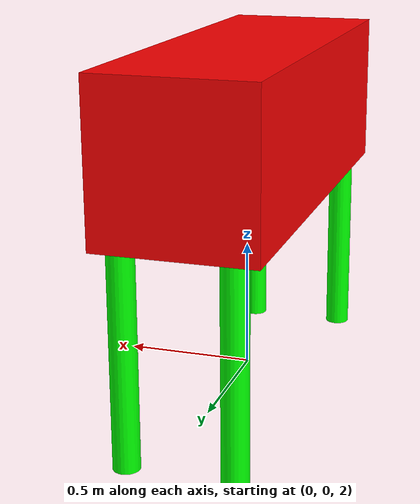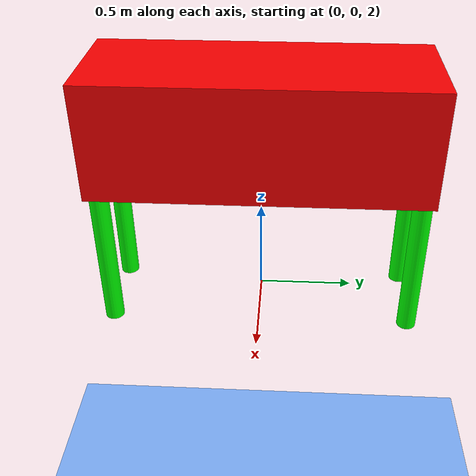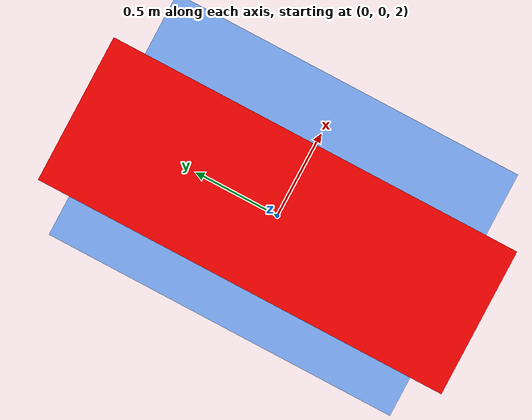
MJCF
<mujoco>
    <worldbody>
        <light diffuse=".5 .5 .5" pos="0 0 2" dir="0 -1 0"/>
        <geom type="plane" size="10 10 0.1" rgba="0.5 0.7 1 1"/>

        <!-- Main body -->
        <body name="animal_body" pos="0 0 3" euler="0 0 0">
            <joint type="free" axis="0 0 0" pos="0 0 0" />
            <geom type="box" size="0.3 0.85 0.3" rgba="1 0 0 1" mass="0.5" />

            <!-- Legs -->
            <!-- Front Right Leg -->
            <body name="front_right_leg" pos="0.2 0.8 -0.6">
                <joint name="joint_front_right_leg" type="hinge" axis="0 0 1" pos="0 0 0" range="-30 30" />
                <geom type="cylinder" size="0.05 0.5" rgba="0 1 0 1" mass="0.1" />
            </body>
            <!-- Front Left Leg -->
            <body name="front_left_leg" pos="-0.2 0.8 -0.6">
                <joint name="joint_front_left_leg" type="hinge" axis="0 0 1" pos="0 0 0" range="-30 30" />
                <geom type="cylinder" size="0.05 0.5" rgba="0 1 0 1" mass="0.1" />
            </body>
            <!-- Back Right Leg -->
            <body name="back_right_leg" pos="0.2 -0.8 -0.6">
                <joint name="joint_back_right_leg" type="hinge" axis="0 0 1" pos="0 0 0" range="-30 30" />
                <geom type="cylinder" size="0.05 0.5" rgba="0 1 0 1" mass="0.1" />
            </body>
            <!-- Back Left Leg -->
            <body name="back_left_leg" pos="-0.2 -0.8 -0.6">
                <joint name="joint_back_left_leg" type="hinge" axis="0 0 1" pos="0 0 0" range="-30 30" />
                <geom type="cylinder" size="0.05 0.5" rgba="0 1 0 1" mass="0.1" />
            </body>
        </body>
    </worldbody>

    <actuator>
        <motor joint="joint_front_right_leg" name="motor_front_right" gear="10" ctrllimited="true" ctrlrange="-5 5" />
        <motor joint="joint_front_left_leg" name="motor_front_left" gear="10" ctrllimited="true" ctrlrange="-5 5" />
        <motor joint="joint_back_right_leg" name="motor_back_right" gear="10" ctrllimited="true" ctrlrange="-5 5" />
        <motor joint="joint_back_left_leg" name="motor_back_left" gear="10" ctrllimited="true" ctrlrange="-5 5" />
    </actuator>
</mujoco>
